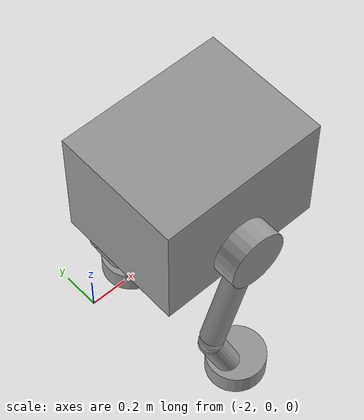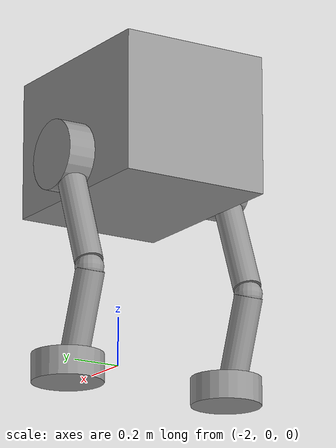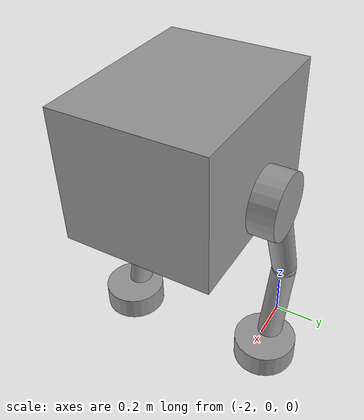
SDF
<?xml version='1.0'?>
<sdf version='1.7'>
  <model name='model'>
    <link name='link_0_clone'>
      <inertial>
        <mass>1</mass>
        <inertia>
          <ixx>0.145833</ixx>
          <ixy>0</ixy>
          <ixz>0</ixz>
          <iyy>0.145833</iyy>
          <iyz>0</iyz>
          <izz>0.125</izz>
        </inertia>
        <pose>0 0 0 0 -0 0</pose>
      </inertial>
      <pose>-1.70371 0.05719 0.046277 0 -0 0</pose>
      <gravity>1</gravity>
      <self_collide>0</self_collide>
      <kinematic>0</kinematic>
      <enable_wind>0</enable_wind>
      <visual name='visual'>
        <pose>0 0 0 0 -0 0</pose>
        <geometry>
          <cylinder>
            <radius>0.15</radius>
            <length>0.12</length>
          </cylinder>
        </geometry>
        <material>
          <lighting>1</lighting>
          <script>
            <uri>file://media/materials/scripts/gazebo.material</uri>
            <name>Gazebo/Grey</name>
          </script>
          <shader type='pixel'>
            <normal_map>__default__</normal_map>
          </shader>
          <ambient>0.3 0.3 0.3 1</ambient>
          <diffuse>0.7 0.7 0.7 1</diffuse>
          <specular>0.01 0.01 0.01 1</specular>
          <emissive>0 0 0 1</emissive>
        </material>
        <transparency>0</transparency>
        <cast_shadows>1</cast_shadows>
      </visual>
      <collision name='collision'>
        <laser_retro>0</laser_retro>
        <max_contacts>10</max_contacts>
        <pose>0 0 0 0 -0 0</pose>
        <geometry>
          <cylinder>
            <radius>0.15</radius>
            <length>0.12</length>
          </cylinder>
        </geometry>
        <surface>
          <friction>
            <ode>
              <mu>1</mu>
              <mu2>1</mu2>
              <fdir1>0 0 0</fdir1>
              <slip1>0</slip1>
              <slip2>0</slip2>
            </ode>
            <torsional>
              <coefficient>1</coefficient>
              <patch_radius>0</patch_radius>
              <surface_radius>0</surface_radius>
              <use_patch_radius>1</use_patch_radius>
              <ode>
                <slip>0</slip>
              </ode>
            </torsional>
          </friction>
          <bounce>
            <restitution_coefficient>0</restitution_coefficient>
            <threshold>1e+06</threshold>
          </bounce>
          <contact>
            <collide_without_contact>0</collide_without_contact>
            <collide_without_contact_bitmask>1</collide_without_contact_bitmask>
            <collide_bitmask>1</collide_bitmask>
            <ode>
              <soft_cfm>0</soft_cfm>
              <soft_erp>0.2</soft_erp>
              <kp>1e+13</kp>
              <kd>1</kd>
              <max_vel>0.01</max_vel>
              <min_depth>0</min_depth>
            </ode>
            <bullet>
              <split_impulse>1</split_impulse>
              <split_impulse_penetration_threshold>-0.01</split_impulse_penetration_threshold>
              <soft_cfm>0</soft_cfm>
              <soft_erp>0.2</soft_erp>
              <kp>1e+13</kp>
              <kd>1</kd>
            </bullet>
          </contact>
        </surface>
      </collision>
    </link>
    <link name='link_0_clone_clone'>
      <inertial>
        <mass>1</mass>
        <inertia>
          <ixx>0.145833</ixx>
          <ixy>0</ixy>
          <ixz>0</ixz>
          <iyy>0.145833</iyy>
          <iyz>0</iyz>
          <izz>0.125</izz>
        </inertia>
        <pose>0 0 0 0 -0 0</pose>
      </inertial>
      <pose>-1.70371 -0.715173 0.046277 0 -0 0</pose>
      <gravity>1</gravity>
      <self_collide>0</self_collide>
      <kinematic>0</kinematic>
      <enable_wind>0</enable_wind>
      <visual name='visual'>
        <pose>0 0 0 0 -0 0</pose>
        <geometry>
          <cylinder>
            <radius>0.15</radius>
            <length>0.12</length>
          </cylinder>
        </geometry>
        <material>
          <lighting>1</lighting>
          <script>
            <uri>file://media/materials/scripts/gazebo.material</uri>
            <name>Gazebo/Grey</name>
          </script>
          <shader type='pixel'>
            <normal_map>__default__</normal_map>
          </shader>
          <ambient>0.3 0.3 0.3 1</ambient>
          <diffuse>0.7 0.7 0.7 1</diffuse>
          <specular>0.01 0.01 0.01 1</specular>
          <emissive>0 0 0 1</emissive>
        </material>
        <transparency>0</transparency>
        <cast_shadows>1</cast_shadows>
      </visual>
      <collision name='collision'>
        <laser_retro>0</laser_retro>
        <max_contacts>10</max_contacts>
        <pose>0 0 0 0 -0 0</pose>
        <geometry>
          <cylinder>
            <radius>0.15</radius>
            <length>0.12</length>
          </cylinder>
        </geometry>
        <surface>
          <friction>
            <ode>
              <mu>1</mu>
              <mu2>1</mu2>
              <fdir1>0 0 0</fdir1>
              <slip1>0</slip1>
              <slip2>0</slip2>
            </ode>
            <torsional>
              <coefficient>1</coefficient>
              <patch_radius>0</patch_radius>
              <surface_radius>0</surface_radius>
              <use_patch_radius>1</use_patch_radius>
              <ode>
                <slip>0</slip>
              </ode>
            </torsional>
          </friction>
          <bounce>
            <restitution_coefficient>0</restitution_coefficient>
            <threshold>1e+06</threshold>
          </bounce>
          <contact>
            <collide_without_contact>0</collide_without_contact>
            <collide_without_contact_bitmask>1</collide_without_contact_bitmask>
            <collide_bitmask>1</collide_bitmask>
            <ode>
              <soft_cfm>0</soft_cfm>
              <soft_erp>0.2</soft_erp>
              <kp>1e+13</kp>
              <kd>1</kd>
              <max_vel>0.01</max_vel>
              <min_depth>0</min_depth>
            </ode>
            <bullet>
              <split_impulse>1</split_impulse>
              <split_impulse_penetration_threshold>-0.01</split_impulse_penetration_threshold>
              <soft_cfm>0</soft_cfm>
              <soft_erp>0.2</soft_erp>
              <kp>1e+13</kp>
              <kd>1</kd>
            </bullet>
          </contact>
        </surface>
      </collision>
    </link>
    <link name='link_1_clone_0'>
      <inertial>
        <mass>1</mass>
        <inertia>
          <ixx>0.145833</ixx>
          <ixy>0</ixy>
          <ixz>0</ixz>
          <iyy>0.145833</iyy>
          <iyz>0</iyz>
          <izz>0.125</izz>
        </inertia>
        <pose>0 0 0 0 -0 0</pose>
      </inertial>
      <pose>-1.79935 -0.715173 0.645744 0 -0 0</pose>
      <gravity>1</gravity>
      <self_collide>0</self_collide>
      <kinematic>0</kinematic>
      <enable_wind>0</enable_wind>
      <visual name='visual'>
        <pose>0 0 0 0 0.35 0</pose>
        <geometry>
          <cylinder>
            <radius>0.06</radius>
            <length>0.4</length>
          </cylinder>
        </geometry>
        <material>
          <lighting>1</lighting>
          <script>
            <uri>file://media/materials/scripts/gazebo.material</uri>
            <name>Gazebo/Grey</name>
          </script>
          <shader type='pixel'>
            <normal_map>__default__</normal_map>
          </shader>
          <ambient>0.3 0.3 0.3 1</ambient>
          <diffuse>0.7 0.7 0.7 1</diffuse>
          <specular>0.01 0.01 0.01 1</specular>
          <emissive>0 0 0 1</emissive>
        </material>
        <transparency>0</transparency>
        <cast_shadows>1</cast_shadows>
      </visual>
      <collision name='collision'>
        <laser_retro>0</laser_retro>
        <max_contacts>10</max_contacts>
        <pose>0 0 0 0 0.35 0</pose>
        <geometry>
          <cylinder>
            <radius>0.06</radius>
            <length>0.4</length>
          </cylinder>
        </geometry>
        <surface>
          <friction>
            <ode>
              <mu>1</mu>
              <mu2>1</mu2>
              <fdir1>0 0 0</fdir1>
              <slip1>0</slip1>
              <slip2>0</slip2>
            </ode>
            <torsional>
              <coefficient>1</coefficient>
              <patch_radius>0</patch_radius>
              <surface_radius>0</surface_radius>
              <use_patch_radius>1</use_patch_radius>
              <ode>
                <slip>0</slip>
              </ode>
            </torsional>
          </friction>
          <bounce>
            <restitution_coefficient>0</restitution_coefficient>
            <threshold>1e+06</threshold>
          </bounce>
          <contact>
            <collide_without_contact>0</collide_without_contact>
            <collide_without_contact_bitmask>1</collide_without_contact_bitmask>
            <collide_bitmask>1</collide_bitmask>
            <ode>
              <soft_cfm>0</soft_cfm>
              <soft_erp>0.2</soft_erp>
              <kp>1e+13</kp>
              <kd>1</kd>
              <max_vel>0.01</max_vel>
              <min_depth>0</min_depth>
            </ode>
            <bullet>
              <split_impulse>1</split_impulse>
              <split_impulse_penetration_threshold>-0.01</split_impulse_penetration_threshold>
              <soft_cfm>0</soft_cfm>
              <soft_erp>0.2</soft_erp>
              <kp>1e+13</kp>
              <kd>1</kd>
            </bullet>
          </contact>
        </surface>
      </collision>
    </link>
    <link name='link_1_clone_0_clone'>
      <inertial>
        <mass>1</mass>
        <inertia>
          <ixx>0.145833</ixx>
          <ixy>0</ixy>
          <ixz>0</ixz>
          <iyy>0.145833</iyy>
          <iyz>0</iyz>
          <izz>0.125</izz>
        </inertia>
        <pose>0 0 0 0 -0 0</pose>
      </inertial>
      <pose>-1.8087 -0.714544 0.232355 0 -0 0</pose>
      <gravity>1</gravity>
      <self_collide>0</self_collide>
      <kinematic>0</kinematic>
      <enable_wind>0</enable_wind>
      <visual name='visual'>
        <pose>0 0 0 0 -0.35 0</pose>
        <geometry>
          <cylinder>
            <radius>0.06</radius>
            <length>0.4</length>
          </cylinder>
        </geometry>
        <material>
          <lighting>1</lighting>
          <script>
            <uri>file://media/materials/scripts/gazebo.material</uri>
            <name>Gazebo/Grey</name>
          </script>
          <shader type='pixel'>
            <normal_map>__default__</normal_map>
          </shader>
          <ambient>0.3 0.3 0.3 1</ambient>
          <diffuse>0.7 0.7 0.7 1</diffuse>
          <specular>0.01 0.01 0.01 1</specular>
          <emissive>0 0 0 1</emissive>
        </material>
        <transparency>0</transparency>
        <cast_shadows>1</cast_shadows>
      </visual>
      <collision name='collision'>
        <laser_retro>0</laser_retro>
        <max_contacts>10</max_contacts>
        <pose>0 0 0 0 -0.35 0</pose>
        <geometry>
          <cylinder>
            <radius>0.06</radius>
            <length>0.4</length>
          </cylinder>
        </geometry>
        <surface>
          <friction>
            <ode>
              <mu>1</mu>
              <mu2>1</mu2>
              <fdir1>0 0 0</fdir1>
              <slip1>0</slip1>
              <slip2>0</slip2>
            </ode>
            <torsional>
              <coefficient>1</coefficient>
              <patch_radius>0</patch_radius>
              <surface_radius>0</surface_radius>
              <use_patch_radius>1</use_patch_radius>
              <ode>
                <slip>0</slip>
              </ode>
            </torsional>
          </friction>
          <bounce>
            <restitution_coefficient>0</restitution_coefficient>
            <threshold>1e+06</threshold>
          </bounce>
          <contact>
            <collide_without_contact>0</collide_without_contact>
            <collide_without_contact_bitmask>1</collide_without_contact_bitmask>
            <collide_bitmask>1</collide_bitmask>
            <ode>
              <soft_cfm>0</soft_cfm>
              <soft_erp>0.2</soft_erp>
              <kp>1e+13</kp>
              <kd>1</kd>
              <max_vel>0.01</max_vel>
              <min_depth>0</min_depth>
            </ode>
            <bullet>
              <split_impulse>1</split_impulse>
              <split_impulse_penetration_threshold>-0.01</split_impulse_penetration_threshold>
              <soft_cfm>0</soft_cfm>
              <soft_erp>0.2</soft_erp>
              <kp>1e+13</kp>
              <kd>1</kd>
            </bullet>
          </contact>
        </surface>
      </collision>
    </link>
    <link name='link_1_clone_0_clone_0'>
      <inertial>
        <mass>1</mass>
        <inertia>
          <ixx>0.145833</ixx>
          <ixy>0</ixy>
          <ixz>0</ixz>
          <iyy>0.145833</iyy>
          <iyz>0</iyz>
          <izz>0.125</izz>
        </inertia>
        <pose>0 0 0 0 -0 0</pose>
      </inertial>
      <pose>-1.79935 0.058729 0.645744 0 -0 0</pose>
      <gravity>1</gravity>
      <self_collide>0</self_collide>
      <kinematic>0</kinematic>
      <enable_wind>0</enable_wind>
      <visual name='visual'>
        <pose>0 0 0 0 0.35 0</pose>
        <geometry>
          <cylinder>
            <radius>0.06</radius>
            <length>0.4</length>
          </cylinder>
        </geometry>
        <material>
          <lighting>1</lighting>
          <script>
            <uri>file://media/materials/scripts/gazebo.material</uri>
            <name>Gazebo/Grey</name>
          </script>
          <shader type='pixel'>
            <normal_map>__default__</normal_map>
          </shader>
          <ambient>0.3 0.3 0.3 1</ambient>
          <diffuse>0.7 0.7 0.7 1</diffuse>
          <specular>0.01 0.01 0.01 1</specular>
          <emissive>0 0 0 1</emissive>
        </material>
        <transparency>0</transparency>
        <cast_shadows>1</cast_shadows>
      </visual>
      <collision name='collision'>
        <laser_retro>0</laser_retro>
        <max_contacts>10</max_contacts>
        <pose>0 0 0 0 0.35 0</pose>
        <geometry>
          <cylinder>
            <radius>0.06</radius>
            <length>0.4</length>
          </cylinder>
        </geometry>
        <surface>
          <friction>
            <ode>
              <mu>1</mu>
              <mu2>1</mu2>
              <fdir1>0 0 0</fdir1>
              <slip1>0</slip1>
              <slip2>0</slip2>
            </ode>
            <torsional>
              <coefficient>1</coefficient>
              <patch_radius>0</patch_radius>
              <surface_radius>0</surface_radius>
              <use_patch_radius>1</use_patch_radius>
              <ode>
                <slip>0</slip>
              </ode>
            </torsional>
          </friction>
          <bounce>
            <restitution_coefficient>0</restitution_coefficient>
            <threshold>1e+06</threshold>
          </bounce>
          <contact>
            <collide_without_contact>0</collide_without_contact>
            <collide_without_contact_bitmask>1</collide_without_contact_bitmask>
            <collide_bitmask>1</collide_bitmask>
            <ode>
              <soft_cfm>0</soft_cfm>
              <soft_erp>0.2</soft_erp>
              <kp>1e+13</kp>
              <kd>1</kd>
              <max_vel>0.01</max_vel>
              <min_depth>0</min_depth>
            </ode>
            <bullet>
              <split_impulse>1</split_impulse>
              <split_impulse_penetration_threshold>-0.01</split_impulse_penetration_threshold>
              <soft_cfm>0</soft_cfm>
              <soft_erp>0.2</soft_erp>
              <kp>1e+13</kp>
              <kd>1</kd>
            </bullet>
          </contact>
        </surface>
      </collision>
    </link>
    <link name='link_1_clone_0_clone_clone'>
      <inertial>
        <mass>1</mass>
        <inertia>
          <ixx>0.145833</ixx>
          <ixy>0</ixy>
          <ixz>0</ixz>
          <iyy>0.145833</iyy>
          <iyz>0</iyz>
          <izz>0.125</izz>
        </inertia>
        <pose>0 0 0 0 -0 0</pose>
      </inertial>
      <pose>-1.8087 0.057646 0.232355 0 -0 0</pose>
      <gravity>1</gravity>
      <self_collide>0</self_collide>
      <kinematic>0</kinematic>
      <enable_wind>0</enable_wind>
      <visual name='visual'>
        <pose>0 0 0 0 -0.35 0</pose>
        <geometry>
          <cylinder>
            <radius>0.06</radius>
            <length>0.4</length>
          </cylinder>
        </geometry>
        <material>
          <lighting>1</lighting>
          <script>
            <uri>file://media/materials/scripts/gazebo.material</uri>
            <name>Gazebo/Grey</name>
          </script>
          <shader type='pixel'>
            <normal_map>__default__</normal_map>
          </shader>
          <ambient>0.3 0.3 0.3 1</ambient>
          <diffuse>0.7 0.7 0.7 1</diffuse>
          <specular>0.01 0.01 0.01 1</specular>
          <emissive>0 0 0 1</emissive>
        </material>
        <transparency>0</transparency>
        <cast_shadows>1</cast_shadows>
      </visual>
      <collision name='collision'>
        <laser_retro>0</laser_retro>
        <max_contacts>10</max_contacts>
        <pose>0 0 0 0 -0.35 0</pose>
        <geometry>
          <cylinder>
            <radius>0.06</radius>
            <length>0.4</length>
          </cylinder>
        </geometry>
        <surface>
          <friction>
            <ode>
              <mu>1</mu>
              <mu2>1</mu2>
              <fdir1>0 0 0</fdir1>
              <slip1>0</slip1>
              <slip2>0</slip2>
            </ode>
            <torsional>
              <coefficient>1</coefficient>
              <patch_radius>0</patch_radius>
              <surface_radius>0</surface_radius>
              <use_patch_radius>1</use_patch_radius>
              <ode>
                <slip>0</slip>
              </ode>
            </torsional>
          </friction>
          <bounce>
            <restitution_coefficient>0</restitution_coefficient>
            <threshold>1e+06</threshold>
          </bounce>
          <contact>
            <collide_without_contact>0</collide_without_contact>
            <collide_without_contact_bitmask>1</collide_without_contact_bitmask>
            <collide_bitmask>1</collide_bitmask>
            <ode>
              <soft_cfm>0</soft_cfm>
              <soft_erp>0.2</soft_erp>
              <kp>1e+13</kp>
              <kd>1</kd>
              <max_vel>0.01</max_vel>
              <min_depth>0</min_depth>
            </ode>
            <bullet>
              <split_impulse>1</split_impulse>
              <split_impulse_penetration_threshold>-0.01</split_impulse_penetration_threshold>
              <soft_cfm>0</soft_cfm>
              <soft_erp>0.2</soft_erp>
              <kp>1e+13</kp>
              <kd>1</kd>
            </bullet>
          </contact>
        </surface>
      </collision>
    </link>
    <link name='link_2_clone'>
      <inertial>
        <mass>1</mass>
        <inertia>
          <ixx>0.145833</ixx>
          <ixy>0</ixy>
          <ixz>0</ixz>
          <iyy>0.145833</iyy>
          <iyz>0</iyz>
          <izz>0.125</izz>
        </inertia>
        <pose>0 0 0 0 -0 0</pose>
      </inertial>
      <pose>-1.66905 0.061405 0.956276 0 -0 0</pose>
      <gravity>1</gravity>
      <self_collide>0</self_collide>
      <kinematic>0</kinematic>
      <enable_wind>0</enable_wind>
      <visual name='visual'>
        <pose>0 0 0 1.5708 -0 0</pose>
        <geometry>
          <cylinder>
            <radius>0.15</radius>
            <length>0.12</length>
          </cylinder>
        </geometry>
        <material>
          <lighting>1</lighting>
          <script>
            <uri>file://media/materials/scripts/gazebo.material</uri>
            <name>Gazebo/Grey</name>
          </script>
          <shader type='pixel'>
            <normal_map>__default__</normal_map>
          </shader>
          <ambient>0.3 0.3 0.3 1</ambient>
          <diffuse>0.7 0.7 0.7 1</diffuse>
          <specular>0.01 0.01 0.01 1</specular>
          <emissive>0 0 0 1</emissive>
        </material>
        <transparency>0</transparency>
        <cast_shadows>1</cast_shadows>
      </visual>
      <collision name='collision'>
        <laser_retro>0</laser_retro>
        <max_contacts>10</max_contacts>
        <pose>0 0 0 1.5708 -0 0</pose>
        <geometry>
          <cylinder>
            <radius>0.15</radius>
            <length>0.12</length>
          </cylinder>
        </geometry>
        <surface>
          <friction>
            <ode>
              <mu>1</mu>
              <mu2>1</mu2>
              <fdir1>0 0 0</fdir1>
              <slip1>0</slip1>
              <slip2>0</slip2>
            </ode>
            <torsional>
              <coefficient>1</coefficient>
              <patch_radius>0</patch_radius>
              <surface_radius>0</surface_radius>
              <use_patch_radius>1</use_patch_radius>
              <ode>
                <slip>0</slip>
              </ode>
            </torsional>
          </friction>
          <bounce>
            <restitution_coefficient>0</restitution_coefficient>
            <threshold>1e+06</threshold>
          </bounce>
          <contact>
            <collide_without_contact>0</collide_without_contact>
            <collide_without_contact_bitmask>1</collide_without_contact_bitmask>
            <collide_bitmask>1</collide_bitmask>
            <ode>
              <soft_cfm>0</soft_cfm>
              <soft_erp>0.2</soft_erp>
              <kp>1e+13</kp>
              <kd>1</kd>
              <max_vel>0.01</max_vel>
              <min_depth>0</min_depth>
            </ode>
            <bullet>
              <split_impulse>1</split_impulse>
              <split_impulse_penetration_threshold>-0.01</split_impulse_penetration_threshold>
              <soft_cfm>0</soft_cfm>
              <soft_erp>0.2</soft_erp>
              <kp>1e+13</kp>
              <kd>1</kd>
            </bullet>
          </contact>
        </surface>
      </collision>
    </link>
    <link name='link_2_clone_0'>
      <inertial>
        <mass>1</mass>
        <inertia>
          <ixx>0.145833</ixx>
          <ixy>0</ixy>
          <ixz>0</ixz>
          <iyy>0.145833</iyy>
          <iyz>0</iyz>
          <izz>0.125</izz>
        </inertia>
        <pose>0 0 0 0 -0 0</pose>
      </inertial>
      <pose>-1.66905 -0.715172 0.956276 0 -0 0</pose>
      <gravity>1</gravity>
      <self_collide>0</self_collide>
      <kinematic>0</kinematic>
      <enable_wind>0</enable_wind>
      <visual name='visual'>
        <pose>0 0 0 1.5708 -0 0</pose>
        <geometry>
          <cylinder>
            <radius>0.15</radius>
            <length>0.12</length>
          </cylinder>
        </geometry>
        <material>
          <lighting>1</lighting>
          <script>
            <uri>file://media/materials/scripts/gazebo.material</uri>
            <name>Gazebo/Grey</name>
          </script>
          <shader type='pixel'>
            <normal_map>__default__</normal_map>
          </shader>
          <ambient>0.3 0.3 0.3 1</ambient>
          <diffuse>0.7 0.7 0.7 1</diffuse>
          <specular>0.01 0.01 0.01 1</specular>
          <emissive>0 0 0 1</emissive>
        </material>
        <transparency>0</transparency>
        <cast_shadows>1</cast_shadows>
      </visual>
      <collision name='collision'>
        <laser_retro>0</laser_retro>
        <max_contacts>10</max_contacts>
        <pose>0 0 0 1.5708 -0 0</pose>
        <geometry>
          <cylinder>
            <radius>0.15</radius>
            <length>0.12</length>
          </cylinder>
        </geometry>
        <surface>
          <friction>
            <ode>
              <mu>1</mu>
              <mu2>1</mu2>
              <fdir1>0 0 0</fdir1>
              <slip1>0</slip1>
              <slip2>0</slip2>
            </ode>
            <torsional>
              <coefficient>1</coefficient>
              <patch_radius>0</patch_radius>
              <surface_radius>0</surface_radius>
              <use_patch_radius>1</use_patch_radius>
              <ode>
                <slip>0</slip>
              </ode>
            </torsional>
          </friction>
          <bounce>
            <restitution_coefficient>0</restitution_coefficient>
            <threshold>1e+06</threshold>
          </bounce>
          <contact>
            <collide_without_contact>0</collide_without_contact>
            <collide_without_contact_bitmask>1</collide_without_contact_bitmask>
            <collide_bitmask>1</collide_bitmask>
            <ode>
              <soft_cfm>0</soft_cfm>
              <soft_erp>0.2</soft_erp>
              <kp>1e+13</kp>
              <kd>1</kd>
              <max_vel>0.01</max_vel>
              <min_depth>0</min_depth>
            </ode>
            <bullet>
              <split_impulse>1</split_impulse>
              <split_impulse_penetration_threshold>-0.01</split_impulse_penetration_threshold>
              <soft_cfm>0</soft_cfm>
              <soft_erp>0.2</soft_erp>
              <kp>1e+13</kp>
              <kd>1</kd>
            </bullet>
          </contact>
        </surface>
      </collision>
    </link>
    <link name='link_4'>
      <inertial>
        <mass>1</mass>
        <inertia>
          <ixx>0.166667</ixx>
          <ixy>0</ixy>
          <ixz>0</ixz>
          <iyy>0.166667</iyy>
          <iyz>0</iyz>
          <izz>0.166667</izz>
        </inertia>
        <pose>0 0 0 0 -0 0</pose>
      </inertial>
      <pose>-1.65199 -0.327888 1.10628 0 -0 0</pose>
      <gravity>1</gravity>
      <self_collide>0</self_collide>
      <kinematic>0</kinematic>
      <enable_wind>0</enable_wind>
      <visual name='visual'>
        <pose>0 0 0 0 -0 0</pose>
        <geometry>
          <box>
            <size>0.85 0.66 0.6</size>
          </box>
        </geometry>
        <material>
          <lighting>1</lighting>
          <script>
            <uri>file://media/materials/scripts/gazebo.material</uri>
            <name>Gazebo/Grey</name>
          </script>
          <shader type='pixel'>
            <normal_map>__default__</normal_map>
          </shader>
          <ambient>0.3 0.3 0.3 1</ambient>
          <diffuse>0.7 0.7 0.7 1</diffuse>
          <specular>0.01 0.01 0.01 1</specular>
          <emissive>0 0 0 1</emissive>
        </material>
        <transparency>0</transparency>
        <cast_shadows>1</cast_shadows>
      </visual>
      <collision name='collision'>
        <laser_retro>0</laser_retro>
        <max_contacts>10</max_contacts>
        <pose>0 0 0 0 -0 0</pose>
        <geometry>
          <box>
            <size>0.85 0.66 0.6</size>
          </box>
        </geometry>
        <surface>
          <friction>
            <ode>
              <mu>1</mu>
              <mu2>1</mu2>
              <fdir1>0 0 0</fdir1>
              <slip1>0</slip1>
              <slip2>0</slip2>
            </ode>
            <torsional>
              <coefficient>1</coefficient>
              <patch_radius>0</patch_radius>
              <surface_radius>0</surface_radius>
              <use_patch_radius>1</use_patch_radius>
              <ode>
                <slip>0</slip>
              </ode>
            </torsional>
          </friction>
          <bounce>
            <restitution_coefficient>0</restitution_coefficient>
            <threshold>1e+06</threshold>
          </bounce>
          <contact>
            <collide_without_contact>0</collide_without_contact>
            <collide_without_contact_bitmask>1</collide_without_contact_bitmask>
            <collide_bitmask>1</collide_bitmask>
            <ode>
              <soft_cfm>0</soft_cfm>
              <soft_erp>0.2</soft_erp>
              <kp>1e+13</kp>
              <kd>1</kd>
              <max_vel>0.01</max_vel>
              <min_depth>0</min_depth>
            </ode>
            <bullet>
              <split_impulse>1</split_impulse>
              <split_impulse_penetration_threshold>-0.01</split_impulse_penetration_threshold>
              <soft_cfm>0</soft_cfm>
              <soft_erp>0.2</soft_erp>
              <kp>1e+13</kp>
              <kd>1</kd>
            </bullet>
          </contact>
        </surface>
      </collision>
    </link>
    <link name='link_5_clone'>
      <inertial>
        <mass>1</mass>
        <inertia>
          <ixx>0.1</ixx>
          <ixy>0</ixy>
          <ixz>0</ixz>
          <iyy>0.1</iyy>
          <iyz>0</iyz>
          <izz>0.1</izz>
        </inertia>
        <pose>0 0 0 0 -0 0</pose>
      </inertial>
      <pose>-1.87353 -0.71583 0.431128 0 -0 0</pose>
      <gravity>1</gravity>
      <self_collide>0</self_collide>
      <kinematic>0</kinematic>
      <enable_wind>0</enable_wind>
      <visual name='visual'>
        <pose>0 0 0 0 -0 0</pose>
        <geometry>
          <sphere>
            <radius>0.06</radius>
          </sphere>
        </geometry>
        <material>
          <lighting>1</lighting>
          <script>
            <uri>file://media/materials/scripts/gazebo.material</uri>
            <name>Gazebo/Grey</name>
          </script>
          <shader type='pixel'>
            <normal_map>__default__</normal_map>
          </shader>
          <ambient>0.3 0.3 0.3 1</ambient>
          <diffuse>0.7 0.7 0.7 1</diffuse>
          <specular>0.01 0.01 0.01 1</specular>
          <emissive>0 0 0 1</emissive>
        </material>
        <transparency>0</transparency>
        <cast_shadows>1</cast_shadows>
      </visual>
      <collision name='collision'>
        <laser_retro>0</laser_retro>
        <max_contacts>10</max_contacts>
        <pose>0 0 0 0 -0 0</pose>
        <geometry>
          <sphere>
            <radius>0.06</radius>
          </sphere>
        </geometry>
        <surface>
          <friction>
            <ode>
              <mu>1</mu>
              <mu2>1</mu2>
              <fdir1>0 0 0</fdir1>
              <slip1>0</slip1>
              <slip2>0</slip2>
            </ode>
            <torsional>
              <coefficient>1</coefficient>
              <patch_radius>0</patch_radius>
              <surface_radius>0</surface_radius>
              <use_patch_radius>1</use_patch_radius>
              <ode>
                <slip>0</slip>
              </ode>
            </torsional>
          </friction>
          <bounce>
            <restitution_coefficient>0</restitution_coefficient>
            <threshold>1e+06</threshold>
          </bounce>
          <contact>
            <collide_without_contact>0</collide_without_contact>
            <collide_without_contact_bitmask>1</collide_without_contact_bitmask>
            <collide_bitmask>1</collide_bitmask>
            <ode>
              <soft_cfm>0</soft_cfm>
              <soft_erp>0.2</soft_erp>
              <kp>1e+13</kp>
              <kd>1</kd>
              <max_vel>0.01</max_vel>
              <min_depth>0</min_depth>
            </ode>
            <bullet>
              <split_impulse>1</split_impulse>
              <split_impulse_penetration_threshold>-0.01</split_impulse_penetration_threshold>
              <soft_cfm>0</soft_cfm>
              <soft_erp>0.2</soft_erp>
              <kp>1e+13</kp>
              <kd>1</kd>
            </bullet>
          </contact>
        </surface>
      </collision>
    </link>
    <link name='link_5_clone_clone'>
      <inertial>
        <mass>1</mass>
        <inertia>
          <ixx>0.1</ixx>
          <ixy>0</ixy>
          <ixz>0</ixz>
          <iyy>0.1</iyy>
          <iyz>0</iyz>
          <izz>0.1</izz>
        </inertia>
        <pose>0 0 0 0 -0 0</pose>
      </inertial>
      <pose>-1.87353 0.059552 0.431128 0 -0 0</pose>
      <gravity>1</gravity>
      <self_collide>0</self_collide>
      <kinematic>0</kinematic>
      <enable_wind>0</enable_wind>
      <visual name='visual'>
        <pose>0 0 0 0 -0 0</pose>
        <geometry>
          <sphere>
            <radius>0.06</radius>
          </sphere>
        </geometry>
        <material>
          <lighting>1</lighting>
          <script>
            <uri>file://media/materials/scripts/gazebo.material</uri>
            <name>Gazebo/Grey</name>
          </script>
          <shader type='pixel'>
            <normal_map>__default__</normal_map>
          </shader>
          <ambient>0.3 0.3 0.3 1</ambient>
          <diffuse>0.7 0.7 0.7 1</diffuse>
          <specular>0.01 0.01 0.01 1</specular>
          <emissive>0 0 0 1</emissive>
        </material>
        <transparency>0</transparency>
        <cast_shadows>1</cast_shadows>
      </visual>
      <collision name='collision'>
        <laser_retro>0</laser_retro>
        <max_contacts>10</max_contacts>
        <pose>0 0 0 0 -0 0</pose>
        <geometry>
          <sphere>
            <radius>0.06</radius>
          </sphere>
        </geometry>
        <surface>
          <friction>
            <ode>
              <mu>1</mu>
              <mu2>1</mu2>
              <fdir1>0 0 0</fdir1>
              <slip1>0</slip1>
              <slip2>0</slip2>
            </ode>
            <torsional>
              <coefficient>1</coefficient>
              <patch_radius>0</patch_radius>
              <surface_radius>0</surface_radius>
              <use_patch_radius>1</use_patch_radius>
              <ode>
                <slip>0</slip>
              </ode>
            </torsional>
          </friction>
          <bounce>
            <restitution_coefficient>0</restitution_coefficient>
            <threshold>1e+06</threshold>
          </bounce>
          <contact>
            <collide_without_contact>0</collide_without_contact>
            <collide_without_contact_bitmask>1</collide_without_contact_bitmask>
            <collide_bitmask>1</collide_bitmask>
            <ode>
              <soft_cfm>0</soft_cfm>
              <soft_erp>0.2</soft_erp>
              <kp>1e+13</kp>
              <kd>1</kd>
              <max_vel>0.01</max_vel>
              <min_depth>0</min_depth>
            </ode>
            <bullet>
              <split_impulse>1</split_impulse>
              <split_impulse_penetration_threshold>-0.01</split_impulse_penetration_threshold>
              <soft_cfm>0</soft_cfm>
              <soft_erp>0.2</soft_erp>
              <kp>1e+13</kp>
              <kd>1</kd>
            </bullet>
          </contact>
        </surface>
      </collision>
    </link>
    <joint name='link_0_clone_JOINT_0' type='fixed'>
      <parent>link_0_clone</parent>
      <child>link_1_clone_0_clone_clone</child>
      <pose>0 0 0 0 -0 0</pose>
      <physics>
        <ode>
          <limit>
            <cfm>0</cfm>
            <erp>0.2</erp>
          </limit>
          <suspension>
            <cfm>0</cfm>
            <erp>0.2</erp>
          </suspension>
        </ode>
      </physics>
    </joint>
    <joint name='link_0_clone_clone_JOINT_5' type='fixed'>
      <parent>link_0_clone_clone</parent>
      <child>link_1_clone_0_clone</child>
      <pose>0 0 0 0 -0 0</pose>
      <physics>
        <ode>
          <limit>
            <cfm>0</cfm>
            <erp>0.2</erp>
          </limit>
          <suspension>
            <cfm>0</cfm>
            <erp>0.2</erp>
          </suspension>
        </ode>
      </physics>
    </joint>
    <joint name='link_1_clone_0_JOINT_7' type='fixed'>
      <parent>link_1_clone_0</parent>
      <child>link_2_clone_0</child>
      <pose>0 0 0 0 -0 0</pose>
      <physics>
        <ode>
          <limit>
            <cfm>0</cfm>
            <erp>0.2</erp>
          </limit>
          <suspension>
            <cfm>0</cfm>
            <erp>0.2</erp>
          </suspension>
        </ode>
      </physics>
    </joint>
    <joint name='link_1_clone_0_JOINT_8' type='fixed'>
      <parent>link_1_clone_0</parent>
      <child>link_5_clone</child>
      <pose>0 0 0 0 -0 0</pose>
      <physics>
        <ode>
          <limit>
            <cfm>0</cfm>
            <erp>0.2</erp>
          </limit>
          <suspension>
            <cfm>0</cfm>
            <erp>0.2</erp>
          </suspension>
        </ode>
      </physics>
    </joint>
    <joint name='link_1_clone_0_clone_0_JOINT_2' type='fixed'>
      <parent>link_1_clone_0_clone_0</parent>
      <child>link_5_clone_clone</child>
      <pose>0 0 0 0 -0 0</pose>
      <physics>
        <ode>
          <limit>
            <cfm>0</cfm>
            <erp>0.2</erp>
          </limit>
          <suspension>
            <cfm>0</cfm>
            <erp>0.2</erp>
          </suspension>
        </ode>
      </physics>
    </joint>
    <joint name='link_1_clone_0_clone_JOINT_6' type='fixed'>
      <parent>link_1_clone_0_clone</parent>
      <child>link_5_clone</child>
      <pose>0 0 0 0 -0 0</pose>
      <physics>
        <ode>
          <limit>
            <cfm>0</cfm>
            <erp>0.2</erp>
          </limit>
          <suspension>
            <cfm>0</cfm>
            <erp>0.2</erp>
          </suspension>
        </ode>
      </physics>
    </joint>
    <joint name='link_1_clone_0_clone_clone_JOINT_1' type='fixed'>
      <parent>link_1_clone_0_clone_clone</parent>
      <child>link_5_clone_clone</child>
      <pose>0 0 0 0 -0 0</pose>
      <physics>
        <ode>
          <limit>
            <cfm>0</cfm>
            <erp>0.2</erp>
          </limit>
          <suspension>
            <cfm>0</cfm>
            <erp>0.2</erp>
          </suspension>
        </ode>
      </physics>
    </joint>
    <joint name='link_2_clone_0_JOINT_9' type='revolute'>
      <parent>link_2_clone_0</parent>
      <child>link_4</child>
      <pose>0 0 0 0 -0 0</pose>
      <axis>
        <xyz>-0 -1 -0</xyz>
        <limit>
          <lower>-1.79769e+308</lower>
          <upper>1.79769e+308</upper>
          <effort>-1</effort>
          <velocity>-1</velocity>
        </limit>
        <dynamics>
          <spring_reference>0</spring_reference>
          <spring_stiffness>0</spring_stiffness>
          <damping>0</damping>
        </dynamics>
      </axis>
      <physics>
        <ode>
          <limit>
            <cfm>0</cfm>
            <erp>0.2</erp>
          </limit>
          <suspension>
            <cfm>0</cfm>
            <erp>0.2</erp>
          </suspension>
        </ode>
      </physics>
    </joint>
    <joint name='link_2_clone_JOINT_3' type='fixed'>
      <parent>link_2_clone</parent>
      <child>link_1_clone_0_clone_0</child>
      <pose>0 0 0 0 -0 0</pose>
      <physics>
        <ode>
          <limit>
            <cfm>0</cfm>
            <erp>0.2</erp>
          </limit>
          <suspension>
            <cfm>0</cfm>
            <erp>0.2</erp>
          </suspension>
        </ode>
      </physics>
    </joint>
    <joint name='link_2_clone_JOINT_4' type='revolute'>
      <parent>link_2_clone</parent>
      <child>link_4</child>
      <pose>0 0 0 0 -0 0</pose>
      <axis>
        <xyz>0 1 0</xyz>
        <limit>
          <lower>-1.79769e+308</lower>
          <upper>1.79769e+308</upper>
          <effort>-1</effort>
          <velocity>-1</velocity>
        </limit>
        <dynamics>
          <spring_reference>0</spring_reference>
          <spring_stiffness>0</spring_stiffness>
          <damping>0</damping>
        </dynamics>
      </axis>
      <physics>
        <ode>
          <limit>
            <cfm>0</cfm>
            <erp>0.2</erp>
          </limit>
          <suspension>
            <cfm>0</cfm>
            <erp>0.2</erp>
          </suspension>
        </ode>
      </physics>
    </joint>
    <static>0</static>
    <allow_auto_disable>1</allow_auto_disable>
  </model>
</sdf>
